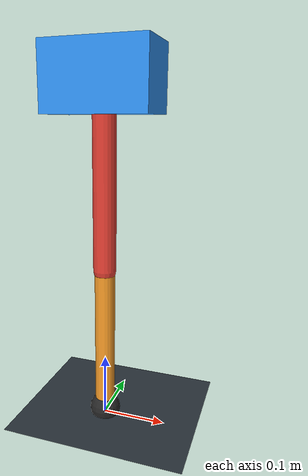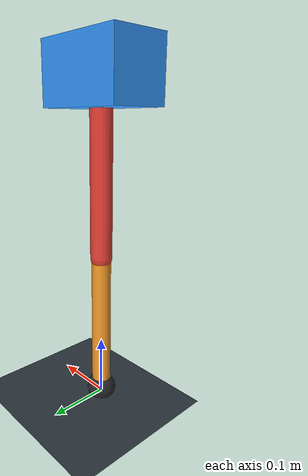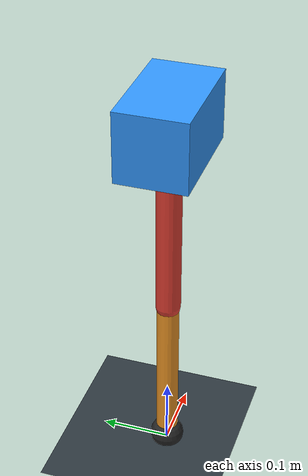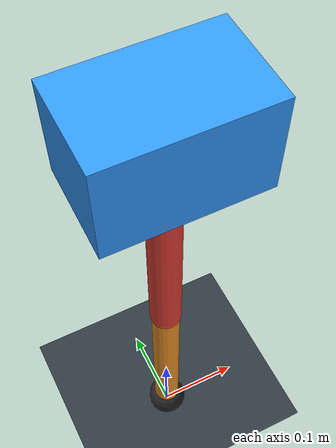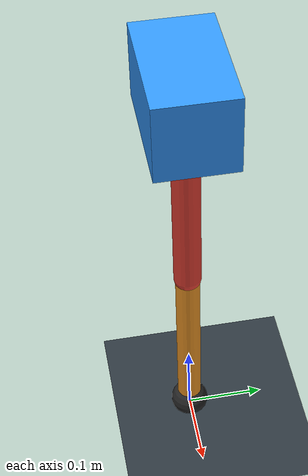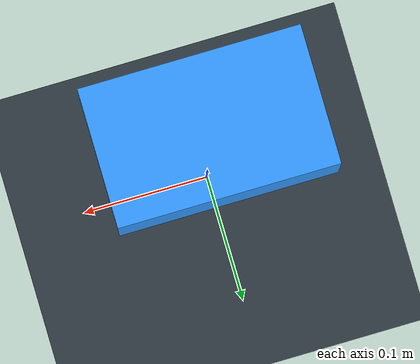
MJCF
<mujoco model="single_axis_two_bar">
  <compiler angle="radian" inertiafromgeom="true"/>
  <option timestep="0.001" integrator="implicitfast" gravity="0 0 -9.81"/>
  <default>
    <joint damping="0.08"/>
    <geom friction="1.2 0.01 0.0001" condim="3"/>
  </default>
  <worldbody>
    <geom name="floor" type="plane" size="5 5 0.1" rgba="0.18 0.22 0.25 1"/>
    <body name="carriage" pos="0 0 0.5368332303588984">
      <joint name="pole_slide" type="slide" axis="0 0 1"/>
      <geom name="payload" type="box" size="0.08 0.05 0.05" mass="2.8689773653944646" rgba="0.2 0.6 1 1"/>
      <body name="thigh" pos="0 0 0">
        <joint name="hip" type="hinge" axis="0 1 0"/>
        <geom name="thigh_link" type="capsule" fromto="0 0 0 0 0 -0.28674251049111443" size="0.018" mass="0.20430782769290073" rgba="0.9 0.25 0.2 1"/>
        <body name="shank" pos="0 0 -0.28674251049111443">
          <joint name="knee" type="hinge" axis="0 1 0"/>
          <geom name="shank_link" type="capsule" fromto="0 0 0 0 0 -0.24092061359022404" size="0.016" mass="0.17165912066806957" rgba="0.95 0.6 0.15 1"/>
          <geom name="foot" type="sphere" pos="0 0 -0.24092061359022404" size="0.025" mass="0.03" rgba="0.15 0.15 0.15 1"/>
          <site name="toe" pos="0 0 -0.24092061359022404" size="0.008"/>
        </body>
      </body>
    </body>
  </worldbody>
  <actuator>
    <motor name="hip_motor" joint="hip" ctrlrange="-34.368993525399326 34.368993525399326"/>
    <motor name="knee_motor" joint="knee" ctrlrange="-82.62942085438938 82.62942085438938"/>
  </actuator>
</mujoco>
